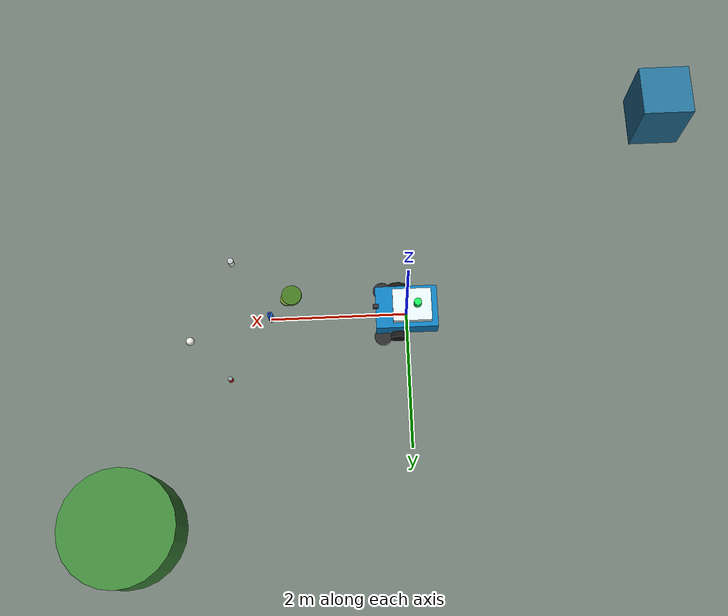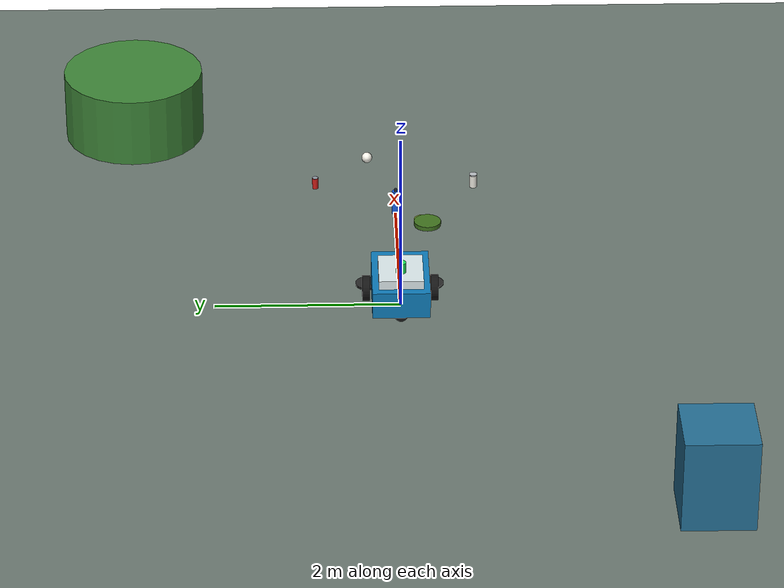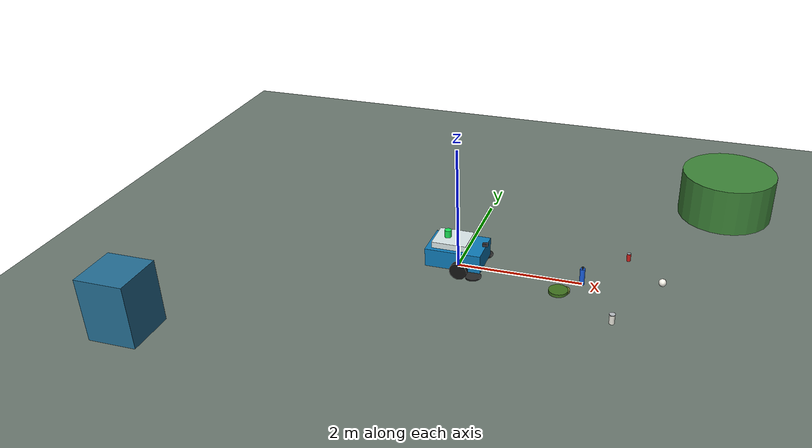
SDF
<?xml version="1.0"?>
<sdf version="1.8">
  <world name="smartclean_trash">
    <gravity>0 0 -9.8</gravity>

    <physics name="1ms" type="ignored">
      <max_step_size>0.001</max_step_size>
      <real_time_factor>1.0</real_time_factor>
    </physics>

    <scene>
      <ambient>0.35 0.35 0.35 1</ambient>
      <background>0.65 0.78 0.90 1</background>
      <shadows>true</shadows>
    </scene>

    <light name="sun" type="directional">
      <cast_shadows>true</cast_shadows>
      <pose>0 0 12 0 0 0</pose>
      <diffuse>0.75 0.75 0.72 1</diffuse>
      <specular>0.2 0.2 0.2 1</specular>
      <attenuation>
        <range>1000</range>
        <constant>0.9</constant>
        <linear>0.01</linear>
        <quadratic>0.001</quadratic>
      </attenuation>
      <direction>-0.45 0.25 -0.86</direction>
    </light>

    <model name="drive_surface">
      <static>true</static>
      <link name="ground_link">
        <collision name="ground_collision">
          <geometry>
            <plane>
              <normal>0 0 1</normal>
              <size>20 16</size>
            </plane>
          </geometry>
          <surface>
            <friction>
              <ode>
                <mu>1.0</mu>
                <mu2>1.0</mu2>
              </ode>
            </friction>
          </surface>
        </collision>
        <visual name="ground_visual">
          <geometry>
            <plane>
              <normal>0 0 1</normal>
              <size>20 16</size>
            </plane>
          </geometry>
          <material>
            <ambient>0.32 0.36 0.34 1</ambient>
            <diffuse>0.42 0.47 0.44 1</diffuse>
            <specular>0.04 0.04 0.04 1</specular>
          </material>
        </visual>
      </link>
    </model>

    <model name="north_planter">
      <static>true</static>
      <pose>4 3 0.40 0 0 0</pose>
      <link name="planter_link">
        <collision name="planter_collision">
          <geometry>
            <cylinder>
              <radius>0.8</radius>
              <length>0.8</length>
            </cylinder>
          </geometry>
        </collision>
        <visual name="planter_visual">
          <geometry>
            <cylinder>
              <radius>0.8</radius>
              <length>0.8</length>
            </cylinder>
          </geometry>
          <material>
            <ambient>0.18 0.38 0.18 1</ambient>
            <diffuse>0.24 0.52 0.22 1</diffuse>
          </material>
        </visual>
      </link>
    </model>

    <model name="waste_bin">
      <static>true</static>
      <pose>-4 -3 0.50 0 0 0</pose>
      <link name="bin_link">
        <collision name="bin_collision">
          <geometry>
            <box>
              <size>0.75 0.75 1.0</size>
            </box>
          </geometry>
        </collision>
        <visual name="bin_visual">
          <geometry>
            <box>
              <size>0.75 0.75 1.0</size>
            </box>
          </geometry>
          <material>
            <ambient>0.10 0.28 0.38 1</ambient>
            <diffuse>0.14 0.43 0.58 1</diffuse>
          </material>
        </visual>
      </link>
    </model>

    <!-- Local trash scene: same robot, plus five synthetic litter models. -->
    <include>
      <uri>model://trash_plastic_bottle</uri>
      <name>trash_plastic_bottle</name>
      <pose>2.0 0.0 0.0 0 0 0.0</pose>
    </include>
    <include>
      <uri>model://trash_paper_cup</uri>
      <name>trash_paper_cup</name>
      <pose>2.6 -0.9 0.0 0 0 0.0</pose>
    </include>
    <include>
      <uri>model://trash_aluminum_can</uri>
      <name>trash_aluminum_can</name>
      <pose>2.6 0.9 0.0 0 0 0.0</pose>
    </include>
    <include>
      <uri>model://trash_fallen_leaves</uri>
      <name>trash_fallen_leaves</name>
      <pose>1.7 -0.35 0.0 0 0 0.0</pose>
    </include>
    <include>
      <uri>model://trash_paper_scrap</uri>
      <name>trash_paper_scrap</name>
      <pose>3.2 0.3 0.0 0 0 0.6</pose>
    </include>

    <include>
      <uri>model://smartclean_robot</uri>
      <name>smartclean_robot</name>
      <pose>0 0 0 0 0 0</pose>
    </include>
  </world>
</sdf>

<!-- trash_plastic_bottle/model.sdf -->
<sdf version="1.8">
  <model name="trash_plastic_bottle">
    <static>true</static>
    <link name="trash_plastic_bottle_link">
      <inertial>
        <mass>0.05</mass>
        <inertia>
          <ixx>0.0002</ixx>
          <ixy>0.0</ixy>
          <ixz>0.0</ixz>
          <iyy>0.0002</iyy>
          <iyz>0.0</iyz>
          <izz>0.0002</izz>
        </inertia>
      </inertial>
      <collision name="trash_plastic_bottle_collision">
        <pose>0 0 0.14 0 0 0</pose>
        <geometry>
<cylinder><radius>0.04</radius><length>0.28</length></cylinder>
        </geometry>
      </collision>
    <visual name="bottle_body">
      <pose>0 0 0.14 0 0 0</pose>
      <geometry>
<cylinder><radius>0.04</radius><length>0.28</length></cylinder>
      </geometry>
      <material>
        <ambient>0.10 0.38 0.90 1</ambient>
        <diffuse>0.10 0.38 0.90 1</diffuse>
        <specular>0.1 0.1 0.1 1</specular>
      </material>
    </visual>
    <visual name="bottle_cap">
      <pose>0 0 0.295 0 0 0</pose>
      <geometry>
<cylinder><radius>0.018</radius><length>0.03</length></cylinder>
      </geometry>
      <material>
        <ambient>0.15 0.18 0.22 1</ambient>
        <diffuse>0.15 0.18 0.22 1</diffuse>
        <specular>0.1 0.1 0.1 1</specular>
      </material>
    </visual>
    </link>
  </model>
</sdf>

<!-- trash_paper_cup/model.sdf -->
<sdf version="1.8">
  <model name="trash_paper_cup">
    <static>true</static>
    <link name="trash_paper_cup_link">
      <inertial>
        <mass>0.05</mass>
        <inertia>
          <ixx>0.0002</ixx>
          <ixy>0.0</ixy>
          <ixz>0.0</ixz>
          <iyy>0.0002</iyy>
          <iyz>0.0</iyz>
          <izz>0.0002</izz>
        </inertia>
      </inertial>
      <collision name="trash_paper_cup_collision">
        <pose>0 0 0.075 0 0 0</pose>
        <geometry>
<cylinder><radius>0.042</radius><length>0.15</length></cylinder>
        </geometry>
      </collision>
    <visual name="cup_body">
      <pose>0 0 0.075 0 0 0</pose>
      <geometry>
<cylinder><radius>0.042</radius><length>0.15</length></cylinder>
      </geometry>
      <material>
        <ambient>0.93 0.92 0.88 1</ambient>
        <diffuse>0.93 0.92 0.88 1</diffuse>
        <specular>0.1 0.1 0.1 1</specular>
      </material>
    </visual>
    <visual name="cup_lid">
      <pose>0 0 0.155 0 0 0</pose>
      <geometry>
<cylinder><radius>0.045</radius><length>0.012</length></cylinder>
      </geometry>
      <material>
        <ambient>0.72 0.74 0.76 1</ambient>
        <diffuse>0.72 0.74 0.76 1</diffuse>
        <specular>0.1 0.1 0.1 1</specular>
      </material>
    </visual>
    </link>
  </model>
</sdf>

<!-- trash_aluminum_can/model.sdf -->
<sdf version="1.8">
  <model name="trash_aluminum_can">
    <static>true</static>
    <link name="trash_aluminum_can_link">
      <inertial>
        <mass>0.05</mass>
        <inertia>
          <ixx>0.0002</ixx>
          <ixy>0.0</ixy>
          <ixz>0.0</ixz>
          <iyy>0.0002</iyy>
          <iyz>0.0</iyz>
          <izz>0.0002</izz>
        </inertia>
      </inertial>
      <collision name="trash_aluminum_can_collision">
        <pose>0 0 0.065 0 0 0</pose>
        <geometry>
<cylinder><radius>0.033</radius><length>0.13</length></cylinder>
        </geometry>
      </collision>
    <visual name="can_body">
      <pose>0 0 0.065 0 0 0</pose>
      <geometry>
<cylinder><radius>0.033</radius><length>0.13</length></cylinder>
      </geometry>
      <material>
        <ambient>0.82 0.12 0.10 1</ambient>
        <diffuse>0.82 0.12 0.10 1</diffuse>
        <specular>0.1 0.1 0.1 1</specular>
      </material>
    </visual>
    <visual name="can_top">
      <pose>0 0 0.132 0 0 0</pose>
      <geometry>
<cylinder><radius>0.033</radius><length>0.004</length></cylinder>
      </geometry>
      <material>
        <ambient>0.55 0.58 0.62 1</ambient>
        <diffuse>0.55 0.58 0.62 1</diffuse>
        <specular>0.1 0.1 0.1 1</specular>
      </material>
    </visual>
    </link>
  </model>
</sdf>

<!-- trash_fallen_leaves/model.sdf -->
<sdf version="1.8">
  <model name="trash_fallen_leaves">
    <static>true</static>
    <link name="trash_fallen_leaves_link">
      <inertial>
        <mass>0.05</mass>
        <inertia>
          <ixx>0.0002</ixx>
          <ixy>0.0</ixy>
          <ixz>0.0</ixz>
          <iyy>0.0002</iyy>
          <iyz>0.0</iyz>
          <izz>0.0002</izz>
        </inertia>
      </inertial>
      <collision name="trash_fallen_leaves_collision">
        <pose>0 0 0.03 0 0 0</pose>
        <geometry>
<cylinder><radius>0.15</radius><length>0.06</length></cylinder>
        </geometry>
      </collision>
    <visual name="leaf_patch_1">
      <pose>0 0 0.04 0 0 0</pose>
      <geometry>
<cylinder><radius>0.15</radius><length>0.05</length></cylinder>
      </geometry>
      <material>
        <ambient>0.25 0.45 0.12 1</ambient>
        <diffuse>0.25 0.45 0.12 1</diffuse>
        <specular>0.1 0.1 0.1 1</specular>
      </material>
    </visual>
    <visual name="leaf_patch_2">
      <pose>0.07 0.05 0.03 0 0 0</pose>
      <geometry>
<cylinder><radius>0.10</radius><length>0.04</length></cylinder>
      </geometry>
      <material>
        <ambient>0.45 0.55 0.20 1</ambient>
        <diffuse>0.45 0.55 0.20 1</diffuse>
        <specular>0.1 0.1 0.1 1</specular>
      </material>
    </visual>
    </link>
  </model>
</sdf>

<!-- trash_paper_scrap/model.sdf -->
<sdf version="1.8">
  <model name="trash_paper_scrap">
    <static>true</static>
    <link name="trash_paper_scrap_link">
      <inertial>
        <mass>0.02</mass>
        <inertia>
          <ixx>0.0002</ixx>
          <ixy>0.0</ixy>
          <ixz>0.0</ixz>
          <iyy>0.0002</iyy>
          <iyz>0.0</iyz>
          <izz>0.0002</izz>
        </inertia>
      </inertial>
      <collision name="trash_paper_scrap_collision">
        <pose>0 0 0.06 0 0 0</pose>
        <geometry>
<sphere><radius>0.06</radius></sphere>
        </geometry>
      </collision>
    <visual name="paper_crumpled">
      <pose>0 0 0.06 0 0 0</pose>
      <geometry>
<sphere><radius>0.06</radius></sphere>
      </geometry>
      <material>
        <ambient>0.95 0.94 0.90 1</ambient>
        <diffuse>0.95 0.94 0.90 1</diffuse>
        <specular>0.1 0.1 0.1 1</specular>
      </material>
    </visual>
    </link>
  </model>
</sdf>

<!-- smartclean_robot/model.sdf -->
<sdf version="1.8">
  <model name="smartclean_robot">
    <static>false</static>
    <self_collide>false</self_collide>

    <!-- The base link represents the main cleaning-vehicle body. -->
    <link name="base_link">
      <pose>0 0 0.25 0 0 0</pose>
      <inertial>
        <mass>45.0</mass>
        <inertia>
          <ixx>1.779</ixx>
          <ixy>0.0</ixy>
          <ixz>0.0</ixz>
          <iyy>3.047</iyy>
          <iyz>0.0</iyz>
          <izz>4.151</izz>
        </inertia>
      </inertial>
      <collision name="body_collision">
        <geometry>
          <box>
            <size>0.90 0.62 0.30</size>
          </box>
        </geometry>
      </collision>
      <visual name="body_visual">
        <geometry>
          <box>
            <size>0.90 0.62 0.30</size>
          </box>
        </geometry>
        <material>
          <ambient>0.04 0.32 0.52 1</ambient>
          <diffuse>0.05 0.48 0.72 1</diffuse>
          <specular>0.10 0.10 0.10 1</specular>
        </material>
      </visual>
      <visual name="top_cover_visual">
        <pose>-0.08 0 0.20 0 0 0</pose>
        <geometry>
          <box>
            <size>0.56 0.48 0.10</size>
          </box>
        </geometry>
        <material>
          <ambient>0.72 0.78 0.80 1</ambient>
          <diffuse>0.86 0.91 0.92 1</diffuse>
        </material>
      </visual>
      <visual name="status_beacon_visual">
        <pose>-0.16 0 0.31 0 0 0</pose>
        <geometry>
          <cylinder>
            <radius>0.055</radius>
            <length>0.12</length>
          </cylinder>
        </geometry>
        <material>
          <ambient>0.08 0.62 0.25 1</ambient>
          <diffuse>0.10 0.90 0.35 1</diffuse>
          <emissive>0.02 0.22 0.08 1</emissive>
        </material>
      </visual>
      <visual name="left_brush_visual">
        <pose>0.35 0.35 -0.19 0 0 0</pose>
        <geometry>
          <cylinder>
            <radius>0.13</radius>
            <length>0.02</length>
          </cylinder>
        </geometry>
        <material>
          <ambient>0.08 0.08 0.08 1</ambient>
          <diffuse>0.16 0.16 0.16 1</diffuse>
        </material>
      </visual>
      <visual name="right_brush_visual">
        <pose>0.35 -0.35 -0.19 0 0 0</pose>
        <geometry>
          <cylinder>
            <radius>0.13</radius>
            <length>0.02</length>
          </cylinder>
        </geometry>
        <material>
          <ambient>0.08 0.08 0.08 1</ambient>
          <diffuse>0.16 0.16 0.16 1</diffuse>
        </material>
      </visual>
    </link>

    <link name="left_wheel_link">
      <pose>0.12 0.37 0.14 0 0 0</pose>
      <inertial>
        <mass>2.5</mass>
        <inertia>
          <ixx>0.01358</ixx>
          <ixy>0.0</ixy>
          <ixz>0.0</ixz>
          <iyy>0.02450</iyy>
          <iyz>0.0</iyz>
          <izz>0.01358</izz>
        </inertia>
      </inertial>
      <collision name="left_wheel_collision">
        <pose>0 0 0 1.57079632679 0 0</pose>
        <geometry>
          <cylinder>
            <radius>0.14</radius>
            <length>0.08</length>
          </cylinder>
        </geometry>
        <surface>
          <friction>
            <ode>
              <mu>1.2</mu>
              <mu2>0.7</mu2>
            </ode>
          </friction>
        </surface>
      </collision>
      <visual name="left_wheel_visual">
        <pose>0 0 0 1.57079632679 0 0</pose>
        <geometry>
          <cylinder>
            <radius>0.14</radius>
            <length>0.08</length>
          </cylinder>
        </geometry>
        <material>
          <ambient>0.035 0.035 0.035 1</ambient>
          <diffuse>0.08 0.08 0.08 1</diffuse>
        </material>
      </visual>
    </link>

    <link name="right_wheel_link">
      <pose>0.12 -0.37 0.14 0 0 0</pose>
      <inertial>
        <mass>2.5</mass>
        <inertia>
          <ixx>0.01358</ixx>
          <ixy>0.0</ixy>
          <ixz>0.0</ixz>
          <iyy>0.02450</iyy>
          <iyz>0.0</iyz>
          <izz>0.01358</izz>
        </inertia>
      </inertial>
      <collision name="right_wheel_collision">
        <pose>0 0 0 1.57079632679 0 0</pose>
        <geometry>
          <cylinder>
            <radius>0.14</radius>
            <length>0.08</length>
          </cylinder>
        </geometry>
        <surface>
          <friction>
            <ode>
              <mu>1.2</mu>
              <mu2>0.7</mu2>
            </ode>
          </friction>
        </surface>
      </collision>
      <visual name="right_wheel_visual">
        <pose>0 0 0 1.57079632679 0 0</pose>
        <geometry>
          <cylinder>
            <radius>0.14</radius>
            <length>0.08</length>
          </cylinder>
        </geometry>
        <material>
          <ambient>0.035 0.035 0.035 1</ambient>
          <diffuse>0.08 0.08 0.08 1</diffuse>
        </material>
      </visual>
    </link>

    <link name="caster_link">
      <pose>-0.34 0 0.075 0 0 0</pose>
      <inertial>
        <mass>0.7</mass>
        <inertia>
          <ixx>0.001575</ixx>
          <ixy>0.0</ixy>
          <ixz>0.0</ixz>
          <iyy>0.001575</iyy>
          <iyz>0.0</iyz>
          <izz>0.001575</izz>
        </inertia>
      </inertial>
      <collision name="caster_collision">
        <geometry>
          <sphere>
            <radius>0.075</radius>
          </sphere>
        </geometry>
        <surface>
          <friction>
            <ode>
              <mu>0.3</mu>
              <mu2>0.3</mu2>
            </ode>
          </friction>
        </surface>
      </collision>
      <visual name="caster_visual">
        <geometry>
          <sphere>
            <radius>0.075</radius>
          </sphere>
        </geometry>
        <material>
          <ambient>0.08 0.08 0.08 1</ambient>
          <diffuse>0.14 0.14 0.14 1</diffuse>
        </material>
      </visual>
    </link>

    <link name="camera_link">
      <pose>0.45 0 0.45 0 -0.15 0</pose>
      <inertial>
        <mass>0.25</mass>
        <inertia>
          <ixx>0.0002</ixx>
          <ixy>0.0</ixy>
          <ixz>0.0</ixz>
          <iyy>0.0002</iyy>
          <iyz>0.0</iyz>
          <izz>0.0002</izz>
        </inertia>
      </inertial>
      <collision name="camera_collision">
        <geometry>
          <box>
            <size>0.08 0.06 0.05</size>
          </box>
        </geometry>
      </collision>
      <visual name="camera_visual">
        <geometry>
          <box>
            <size>0.08 0.06 0.05</size>
          </box>
        </geometry>
        <material>
          <ambient>0.12 0.12 0.14 1</ambient>
          <diffuse>0.18 0.18 0.22 1</diffuse>
        </material>
      </visual>
      <sensor name="rgb_camera" type="camera">
        <pose>0 0 0 0 0 0</pose>
        <topic>/smartclean/camera/image</topic>
        <camera_info_topic>/smartclean/camera/camera_info</camera_info_topic>
        <update_rate>10</update_rate>
        <camera>
          <horizontal_fov>1.0471975512</horizontal_fov>
          <image>
            <width>640</width>
            <height>480</height>
            <format>R8G8B8</format>
          </image>
          <clip>
            <near>0.05</near>
            <far>100</far>
          </clip>
        </camera>
        <always_on>1</always_on>
        <visualize>0</visualize>
      </sensor>
    </link>

    <joint name="left_wheel_joint" type="revolute">
      <parent>base_link</parent>
      <child>left_wheel_link</child>
      <axis>
        <xyz expressed_in="__model__">0 1 0</xyz>
        <limit>
          <lower>-1.0e16</lower>
          <upper>1.0e16</upper>
          <effort>80.0</effort>
          <velocity>12.0</velocity>
        </limit>
        <dynamics>
          <damping>0.05</damping>
          <friction>0.02</friction>
        </dynamics>
      </axis>
    </joint>

    <joint name="right_wheel_joint" type="revolute">
      <parent>base_link</parent>
      <child>right_wheel_link</child>
      <axis>
        <xyz expressed_in="__model__">0 1 0</xyz>
        <limit>
          <lower>-1.0e16</lower>
          <upper>1.0e16</upper>
          <effort>80.0</effort>
          <velocity>12.0</velocity>
        </limit>
        <dynamics>
          <damping>0.05</damping>
          <friction>0.02</friction>
        </dynamics>
      </axis>
    </joint>

    <joint name="caster_joint" type="ball">
      <parent>base_link</parent>
      <child>caster_link</child>
    </joint>

    <joint name="camera_joint" type="fixed">
      <parent>base_link</parent>
      <child>camera_link</child>
    </joint>

    <plugin
      filename="ignition-gazebo-diff-drive-system"
      name="gz::sim::systems::DiffDrive">
      <left_joint>left_wheel_joint</left_joint>
      <right_joint>right_wheel_joint</right_joint>
      <wheel_separation>0.74</wheel_separation>
      <wheel_radius>0.14</wheel_radius>
      <topic>/smartclean/safe_cmd_vel</topic>
      <odom_topic>/smartclean/odom</odom_topic>
      <tf_topic>/smartclean/tf</tf_topic>
      <frame_id>odom</frame_id>
      <child_frame_id>base_link</child_frame_id>
      <odom_publish_frequency>30</odom_publish_frequency>
      <max_linear_velocity>1.2</max_linear_velocity>
      <min_linear_velocity>-0.5</min_linear_velocity>
      <max_angular_velocity>1.5</max_angular_velocity>
      <min_angular_velocity>-1.5</min_angular_velocity>
      <max_linear_acceleration>0.8</max_linear_acceleration>
      <min_linear_acceleration>-1.0</min_linear_acceleration>
      <max_angular_acceleration>2.0</max_angular_acceleration>
      <min_angular_acceleration>-2.0</min_angular_acceleration>
    </plugin>
  </model>
</sdf>
